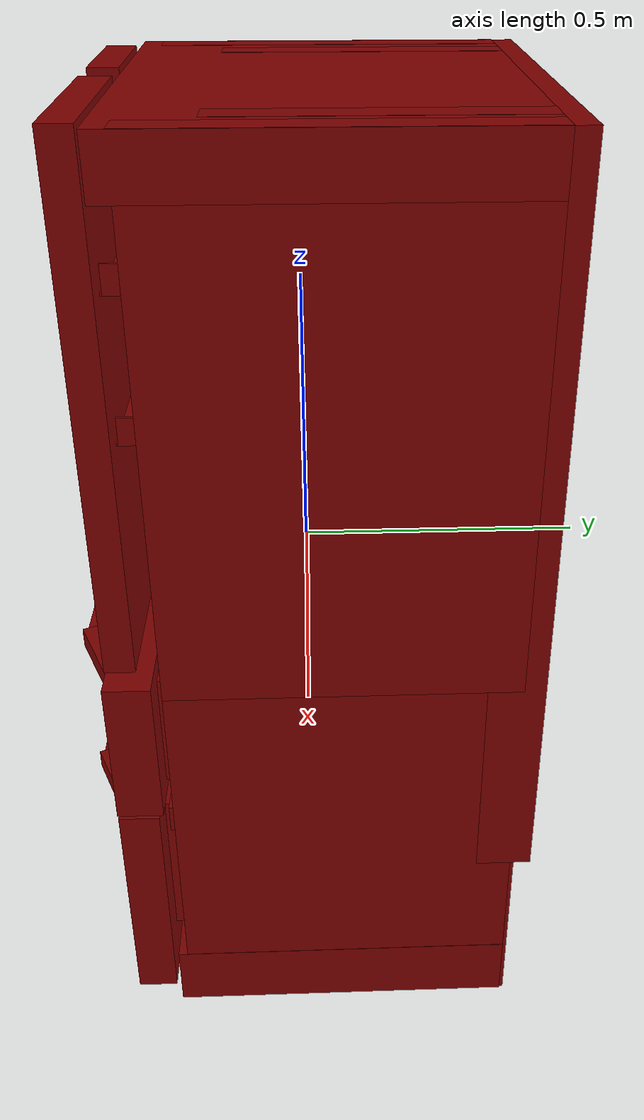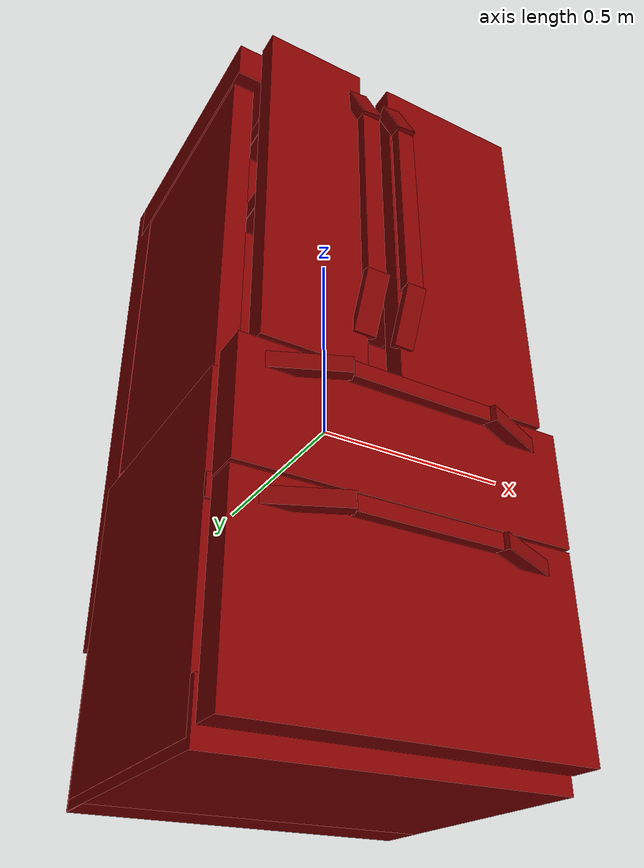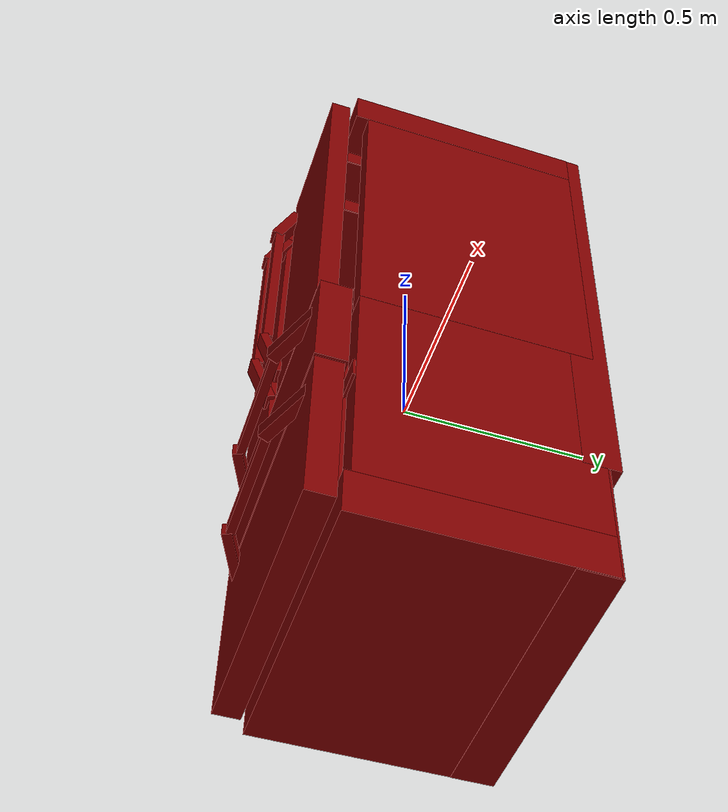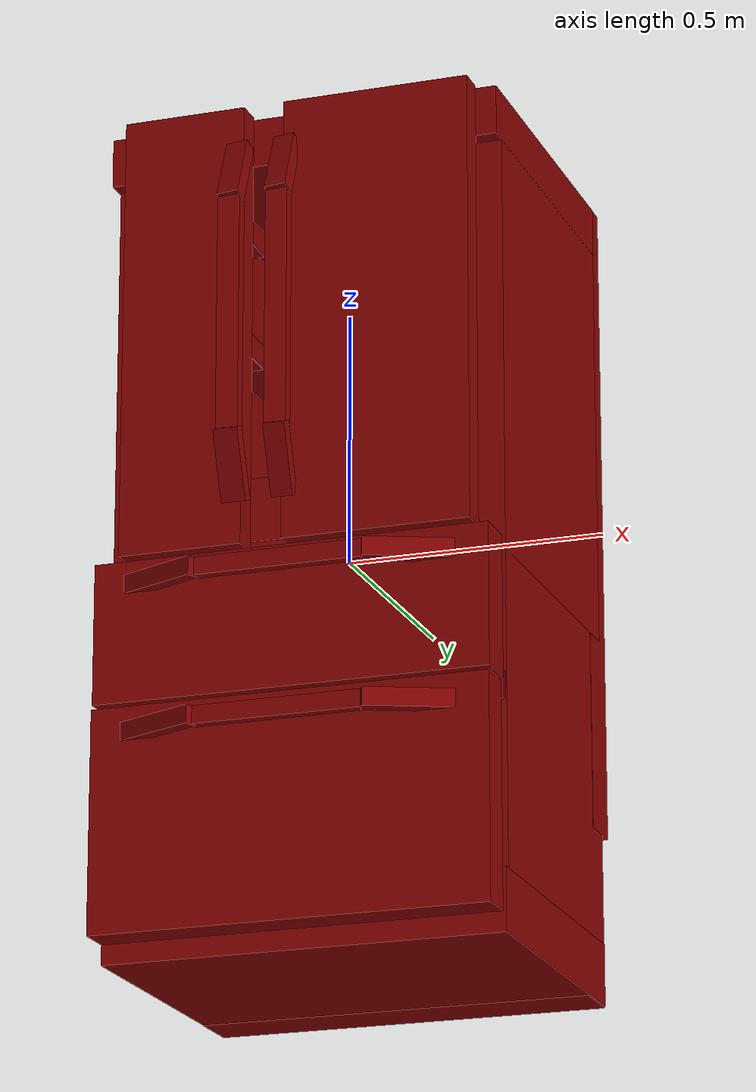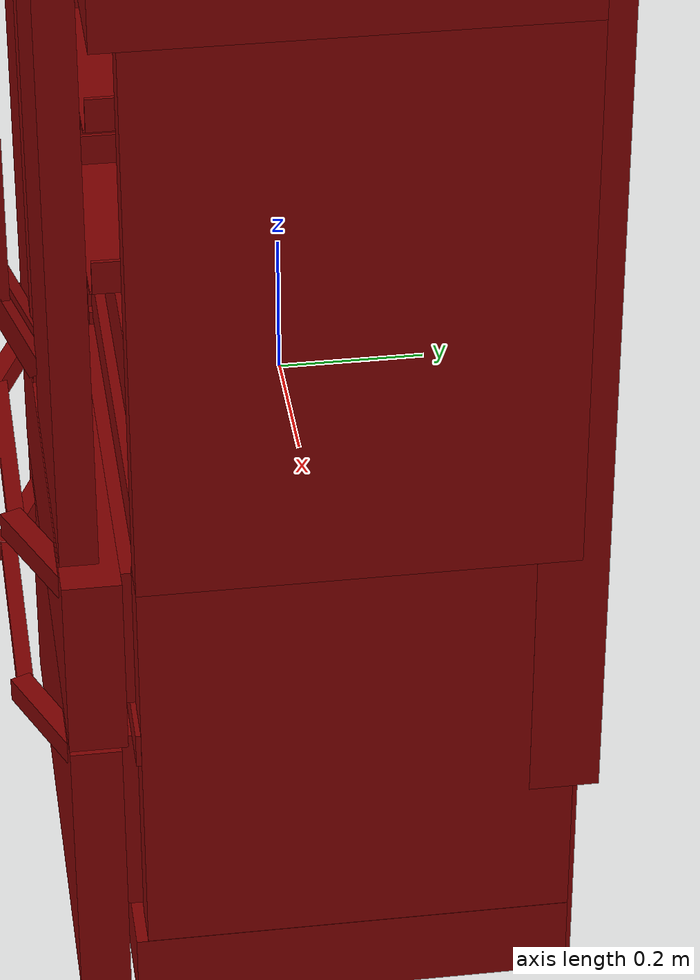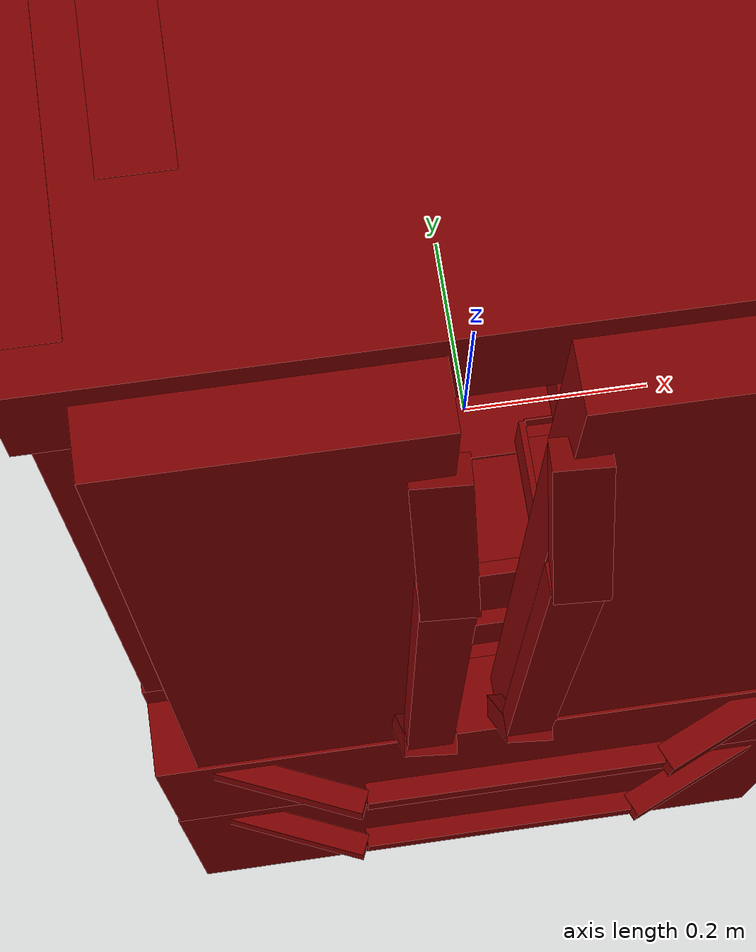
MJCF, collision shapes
<mujoco model="model">
  <compiler angle="radian"/>
  <asset>
    <mesh file="visuals/Body001.obj" name="Body001_vis"/>
    <mesh file="visuals/Body001_Clear.obj" name="Body001_Clear_vis"/>
    <mesh file="visuals/Door001.obj" name="Door001_vis"/>
    <mesh file="visuals/Door001_Clear.obj" name="Door001_Clear_vis"/>
    <mesh file="visuals/Door002.obj" name="Door002_vis"/>
    <mesh file="visuals/Door002_Clear.obj" name="Door002_Clear_vis"/>
    <mesh file="visuals/Drawer001.obj" name="Drawer001_vis"/>
    <mesh file="visuals/Drawer002.obj" name="Drawer002_vis"/>
    <mesh file="visuals/Drawer003.obj" name="Drawer003_vis"/>
    <texture file="visuals/T_BC001.png" name="Body001_material" type="2d"/>
    <material name="Body001_material" rgba="1 1 1 1.0" texture="Body001_material" shininess="0.6585055291652679" specular="0.3103448502657381"/>
    <texture file="visuals/T_BC001.png" name="Body001_Clear_material" type="2d"/>
    <material name="Body001_Clear_material" rgba="1 1 1 0.4644808769226074" texture="Body001_Clear_material" shininess="0.2512328028678894" specular="0.3103448502657381"/>
    <texture file="visuals/T_BC001.png" name="Door001_material" type="2d"/>
    <material name="Door001_material" rgba="1 1 1 1.0" texture="Door001_material" shininess="0.6585055291652679" specular="0.3103448502657381"/>
    <texture file="visuals/T_BC001.png" name="Door001_Clear_material" type="2d"/>
    <material name="Door001_Clear_material" rgba="1 1 1 0.4644808769226074" texture="Door001_Clear_material" shininess="0.2512328028678894" specular="0.3103448502657381"/>
    <texture file="visuals/T_BC001.png" name="Door002_material" type="2d"/>
    <material name="Door002_material" rgba="1 1 1 1.0" texture="Door002_material" shininess="0.6585055291652679" specular="0.3103448502657381"/>
    <texture file="visuals/T_BC001.png" name="Door002_Clear_material" type="2d"/>
    <material name="Door002_Clear_material" rgba="1 1 1 0.4644808769226074" texture="Door002_Clear_material" shininess="0.2512328028678894" specular="0.3103448502657381"/>
    <texture file="visuals/T_BC001.png" name="Drawer001_material" type="2d"/>
    <material name="Drawer001_material" rgba="1 1 1 1.0" texture="Drawer001_material" shininess="0.6585055291652679" specular="0.3103448502657381"/>
    <texture file="visuals/T_BC001.png" name="Drawer002_material" type="2d"/>
    <material name="Drawer002_material" rgba="1 1 1 1.0" texture="Drawer002_material" shininess="0.6585055291652679" specular="0.3103448502657381"/>
    <texture file="visuals/T_BC001.png" name="Drawer003_material" type="2d"/>
    <material name="Drawer003_material" rgba="1 1 1 1.0" texture="Drawer003_material" shininess="0.6585055291652679" specular="0.3103448502657381"/>
  </asset>
  <default>
    <default class="visual">
      <geom conaffinity="0" contype="0" group="1" type="mesh"/>
    </default>
    <default class="collision">
      <geom group="0" rgba="0.5 0 0 0.5"/>
    </default>
    <default class="spawn">
      <geom group="0" rgba="1 1 1 0.5" contype="0" conaffinity="0"/>
      <site group="0" rgba="1 1 1 0.5"/>
    </default>
    <default class="region">
      <geom group="1" conaffinity="0" contype="0" rgba="0 1 0 0"/>
    </default>
  </default>
  <worldbody>
    <body>
      <body name="object">
        <geom mesh="Body001_vis" type="mesh" solimp="0.998 0.998 0.001" solref="0.001 1" density="100" friction="0.95 0.3 0.1" class="visual" material="Body001_material"/>
        <geom class="collision" type="box" pos="0.359128 0.058113 0.361855" size="0.02636534348130226 0.2985576391220093 0.4524836838245392" quat="1.0 0.0 0.0 0.0"/>
        <geom class="collision" type="box" pos="-0.358292 0.058113 0.356553" size="0.025057246908545494 0.2985575795173645 0.4577849507331848" quat="1.0 0.0 0.0 0.0"/>
        <geom class="collision" type="box" pos="-0.000614 0.344328 0.168060" size="0.38610485196113586 0.04896754398941994 0.645643949508667" quat="1.0 0.0 0.0 0.0"/>
        <geom class="collision" type="box" pos="-0.001632 0.308223 -0.449676" size="0.38464027643203735 0.055489346385002136 0.36301159858703613" quat="1.0 0.0 0.0 0.0"/>
        <geom class="collision" type="box" pos="-0.000583 0.137514 -0.623895" size="0.35854974389076233 0.10725203901529312 0.060192689299583435" quat="0.8052064180374146 0.5929946303367615 -1.3167124518090139e-16 1.2232067335595694e-24"/>
        <geom class="collision" type="box" pos="-0.000343 0.041244 0.765736" size="0.386502742767334 0.3154264986515045 0.04821908101439476" quat="1.0 0.0 0.0 0.0"/>
        <geom class="collision" type="box" pos="-0.000583 0.062967 -0.061921" size="0.3585450351238251 0.29810455441474915 0.038612063974142075" quat="1.0 0.0 0.0 0.0"/>
        <geom class="collision" type="box" pos="-0.351127 0.058113 -0.440472" size="0.03585692122578621 0.2985583245754242 0.35007819533348083" quat="1.0 0.0 0.0 0.0"/>
        <geom class="collision" type="box" pos="0.351184 0.058113 -0.440472" size="0.03403741121292114 0.29855847358703613 0.35007843375205994" quat="1.0 0.0 0.0 0.0"/>
        <geom class="collision" type="box" pos="-0.001632 -0.211395 -0.351708" size="0.3846416473388672 0.03633573278784752 0.025895364582538605" quat="1.0 0.0 0.0 0.0"/>
        <geom class="collision" type="box" pos="-0.000317 0.049934 -0.751486" size="0.38624995946884155 0.30673739314079285 0.060066159814596176" quat="1.0 0.0 0.0 0.0"/>
        <geom class="collision" type="box" pos="-0.000583 0.198242 -0.588251" size="0.35854974389076233 0.10725203901529312 0.07130120694637299" quat="0.6569743752479553 0.7539129257202148 -1.6740228450452978e-16 8.92800271459846e-24"/>
        <geom class="collision" type="box" pos="-0.274652 0.113783 0.356553" size="0.027455275878310204 0.24289001524448395 0.4577880799770355" quat="1.0 0.0 0.0 0.0"/>
        <geom class="collision" type="box" pos="0.287020 0.113783 0.356553" size="0.0274552870541811 0.2428901195526123 0.45778822898864746" quat="1.0 0.0 0.0 0.0"/>
        <body name="Body001_Clear">
          <geom mesh="Body001_Clear_vis" type="mesh" solimp="0.998 0.998 0.001" solref="0.001 1" density="100" friction="0.95 0.3 0.1" class="visual" material="Body001_Clear_material"/>
          <geom class="collision" type="box" pos="-0.001629 0.108898 0.423020" size="0.32924920320510864 0.2075573056936264 0.00248630135320127" quat="1.0 0.0 0.0 0.0"/>
          <geom class="collision" type="box" pos="-0.001629 0.109281 0.111395" size="0.32924920320510864 0.2075575441122055 0.00248630135320127" quat="1.0 0.0 0.0 0.0"/>
        </body>
        <body name="Door001">
          <joint axis="0.0 0.0 -1.0" pos="-0.343997 -0.309157 0.356832" limited="true" name="Door001_joint" range="0.0 1.5707963267948966" type="hinge" damping="1" frictionloss="1" armature=".01" stiffness="0.05"/>
          <geom mesh="Door001_vis" type="mesh" solimp="0.998 0.998 0.001" solref="0.001 1" density="100" friction="0.95 0.3 0.1" class="visual" material="Door001_material"/>
          <geom class="collision" type="box" pos="-0.102208 -0.380201 0.381017" size="0.02168402262032032 0.012337328866124153 0.23359352350234985" quat="1.0 0.0 0.0 0.0"/>
          <geom class="collision" type="box" pos="-0.102597 -0.358925 0.672237" size="0.06859152764081955 0.01515895128250122 0.021706990897655487" quat="0.678273618221283 -0.17464637756347656 -0.7043882012367249 0.11524246633052826"/>
          <geom class="collision" type="box" pos="-0.102715 -0.362653 0.086925" size="0.06867087632417679 0.010878975503146648 0.024787630885839462" quat="0.7043883204460144 0.11524229496717453 -0.6782735586166382 -0.17464612424373627"/>
          <geom class="collision" type="box" pos="-0.214396 -0.310711 0.377629" size="0.12037475407123566 0.02620462328195572 0.43623125553131104" quat="1.0 0.0 0.0 0.0"/>
          <body name="Door001_Clear">
            <geom mesh="Door001_Clear_vis" type="mesh" solimp="0.998 0.998 0.001" solref="0.001 1" density="100" friction="0.95 0.3 0.1" class="visual" material="Door001_Clear_material"/>
            <geom class="collision" type="box" pos="-0.215597 -0.225583 0.346610" size="0.1022782251238823 0.05434567481279373 0.0020508288871496916" quat="1.0 0.0 0.0 0.0"/>
            <geom class="collision" type="box" pos="-0.114170 -0.223968 0.368172" size="0.0027227068785578012 0.05273094028234482 0.02305692434310913" quat="1.0 0.0 0.0 0.0"/>
            <geom class="collision" type="box" pos="-0.316562 -0.223968 0.368172" size="0.002722695469856262 0.0527309887111187 0.023056956008076668" quat="1.0 0.0 0.0 0.0"/>
            <geom class="collision" type="box" pos="-0.215366 -0.172270 0.387212" size="0.0984693393111229 0.0010846159420907497 0.0033594632986932993" quat="0.9606382250785828 -0.27780213952064514 0.0004516859189607203 -6.287743599386886e-05"/>
            <geom class="collision" type="box" pos="-0.215597 -0.225583 0.577356" size="0.10227879881858826 0.054345857352018356 0.002050836104899645" quat="1.0 0.0 0.0 0.0"/>
            <geom class="collision" type="box" pos="-0.114170 -0.223968 0.598919" size="0.002722715260460973 0.05273112654685974 0.023057041689753532" quat="1.0 0.0 0.0 0.0"/>
            <geom class="collision" type="box" pos="-0.316562 -0.223968 0.598919" size="0.0027227052487432957 0.05273117497563362 0.02305707335472107" quat="1.0 0.0 0.0 0.0"/>
            <geom class="collision" type="box" pos="-0.215366 -0.172449 0.614841" size="0.09846959263086319 0.0010846188524737954 0.0033594744745641947" quat="0.9692435264587402 -0.2461036890745163 -0.0 0.0"/>
          </body>
        </body>
        <body name="Door002">
          <joint axis="0.0 0.0 1.0" pos="0.355414 -0.308228 0.375739" limited="true" name="Door002_joint" range="0.0 1.5707963267948966" type="hinge" damping="1" frictionloss="1" armature=".01" stiffness="0.05"/>
          <geom mesh="Door002_vis" type="mesh" solimp="0.998 0.998 0.001" solref="0.001 1" density="100" friction="0.95 0.3 0.1" class="visual" material="Door002_material"/>
          <geom class="collision" type="box" pos="-0.007594 -0.380400 0.381017" size="0.021374424919486046 0.01253611408174038 0.23359449207782745" quat="1.0 0.0 0.0 0.0"/>
          <geom class="collision" type="box" pos="-0.007621 -0.359553 0.672526" size="0.06859152764081955 0.015787482261657715 0.020976748317480087" quat="0.678273618221283 -0.17464637756347656 -0.7043882012367249 0.11524246633052826"/>
          <geom class="collision" type="box" pos="-0.007898 -0.362572 0.086983" size="0.06859152019023895 0.011021395213901997 0.021683957427740097" quat="0.7043883204460144 0.11524229496717453 -0.6782735586166382 -0.17464612424373627"/>
          <geom class="collision" type="box" pos="0.167185 -0.310659 0.377629" size="0.1817389875650406 0.02615285851061344 0.4362322986125946" quat="1.0 0.0 0.0 0.0"/>
          <body name="Door002_Clear">
            <geom mesh="Door002_Clear_vis" type="mesh" solimp="0.998 0.998 0.001" solref="0.001 1" density="100" friction="0.95 0.3 0.1" class="visual" material="Door002_Clear_material"/>
            <geom class="collision" type="box" pos="0.162713 -0.225583 0.344323" size="0.15988805890083313 0.05434613674879074 0.002050847513601184" quat="1.0 0.0 0.0 0.0"/>
            <geom class="collision" type="box" pos="0.321748 -0.223968 0.365885" size="0.0027227168902754784 0.052731405943632126 0.023057222366333008" quat="1.0 0.0 0.0 0.0"/>
            <geom class="collision" type="box" pos="0.004140 -0.223968 0.365885" size="0.0027227201499044895 0.05273145064711571 0.023057254031300545" quat="1.0 0.0 0.0 0.0"/>
            <geom class="collision" type="box" pos="0.162944 -0.170903 0.383335" size="0.1560763120651245 0.001084623159840703 0.0033594914712011814" quat="0.9737818241119385 -0.2274840772151947 -0.0 0.0"/>
            <geom class="collision" type="box" pos="0.162713 -0.225583 0.577356" size="0.15988868474960327 0.054346323013305664 0.002050854731351137" quat="1.0 0.0 0.0 0.0"/>
            <geom class="collision" type="box" pos="0.321748 -0.223968 0.598919" size="0.002722726669162512 0.05273158848285675 0.02305733971297741" quat="1.0 0.0 0.0 0.0"/>
            <geom class="collision" type="box" pos="0.004140 -0.223968 0.598919" size="0.002722729928791523 0.05273163691163063 0.023057371377944946" quat="1.0 0.0 0.0 0.0"/>
            <geom class="collision" type="box" pos="0.162944 -0.169859 0.617310" size="0.15607678890228271 0.0010846260702237487 0.0033595028799027205" quat="0.9810242652893066 -0.19388504326343536 -0.0 0.0"/>
          </body>
        </body>
        <body name="Drawer001">
          <joint axis="0.0 -1.0 0.0" pos="0.001014 -0.133920 -0.561322" limited="true" name="Drawer001_joint" range="0.0 0.3" type="slide" damping="1" frictionloss="1" armature=".01" stiffness="0.05"/>
          <geom mesh="Drawer001_vis" type="mesh" solimp="0.998 0.998 0.001" solref="0.001 1" density="100" friction="0.95 0.3 0.1" class="visual" material="Drawer001_material"/>
          <geom class="collision" type="box" pos="0.004326 -0.111392 -0.676569" size="0.27537819743156433 0.15478265285491943 0.0027201969642192125" quat="1.0 0.0 0.0 0.0"/>
          <geom class="collision" type="box" pos="0.280138 -0.107514 -0.545668" size="0.025485331192612648 0.15866568684577942 0.13257615268230438" quat="1.0 0.0 0.0 0.0"/>
          <geom class="collision" type="box" pos="-0.277274 -0.107514 -0.545668" size="0.019958391785621643 0.15866568684577942 0.1325760930776596" quat="1.0 0.0 0.0 0.0"/>
          <geom class="collision" type="box" pos="0.004326 0.068329 -0.571143" size="0.29865118861198425 0.008362683467566967 0.09997935593128204" quat="0.9911026954650879 -0.13309930264949799 0.0 0.0"/>
          <geom class="collision" type="box" pos="-0.000121 -0.301486 -0.562552" size="0.38272878527641296 0.035327401012182236 0.21285556256771088" quat="1.0 0.0 0.0 0.0"/>
          <geom class="collision" type="box" pos="-0.000920 -0.382467 -0.396499" size="0.16135644912719727 0.011311881244182587 0.017042309045791626" quat="1.0 0.0 0.0 0.0"/>
          <geom class="collision" type="box" pos="0.238962 -0.355220 -0.396379" size="0.08587073534727097 0.01505428645759821 0.017603665590286255" quat="0.9793906807899475 0.0 0.0 0.2019749879837036"/>
          <geom class="collision" type="box" pos="-0.243256 -0.357477 -0.396379" size="0.08587072789669037 0.013152176514267921 0.017603663727641106" quat="0.9793907403945923 0.0 0.0 -0.20197463035583496"/>
          <geom class="collision" type="box" pos="0.000847 -0.074988 -0.612343" size="0.010680019855499268 0.1267247200012207 0.06990315765142441" quat="1.0 0.0 0.0 0.0"/>
          <geom class="collision" type="box" pos="0.280138 -0.032852 -0.447484" size="0.025485331192612648 0.15866568684577942 0.034893859177827835" quat="1.0 0.0 0.0 0.0"/>
          <geom class="collision" type="box" pos="0.280138 0.050047 -0.538530" size="0.025485331192612648 0.11963428556919098 0.034643225371837616" quat="0.796074390411377 0.6051988005638123 1.343811153374047e-16 -6.183057065242461e-23"/>
          <geom class="collision" type="box" pos="-0.280332 0.050047 -0.538530" size="0.025485331192612648 0.11963428556919098 0.034643225371837616" quat="0.796074390411377 0.6051988005638123 1.343811153374047e-16 -6.183057065242461e-23"/>
          <geom class="collision" type="box" pos="-0.280332 -0.032852 -0.447484" size="0.025485331192612648 0.15866568684577942 0.034893859177827835" quat="1.0 0.0 0.0 0.0"/>
          <geom class="collision" type="box" pos="-0.253341 -0.085553 -0.571984" size="0.020802145823836327 0.03368447721004486 0.1062593013048172" quat="1.0 0.0 0.0 0.0"/>
          <geom class="collision" type="box" pos="0.257873 -0.085553 -0.571984" size="0.020802145823836327 0.03368447721004486 0.1062593013048172" quat="1.0 0.0 0.0 0.0"/>
          <geom class="collision" type="box" pos="0.001374 -0.234452 -0.531530" size="0.31069764494895935 0.032359808683395386 0.15073318779468536" quat="1.0 0.0 0.0 0.0"/>
        </body>
        <body name="Drawer002">
          <joint axis="0.0 -1.0 0.0" pos="0.001014 -0.075600 -0.206923" limited="true" name="Drawer002_joint" range="0.0 0.3" type="slide" damping="1" frictionloss="1" armature=".01" stiffness="0.05"/>
          <geom mesh="Drawer002_vis" type="mesh" solimp="0.998 0.998 0.001" solref="0.001 1" density="100" friction="0.95 0.3 0.1" class="visual" material="Drawer002_material"/>
          <geom class="collision" type="box" pos="-0.009150 -0.062528 -0.321651" size="0.27537819743156433 0.20364704728126526 0.0027201951015740633" quat="1.0 0.0 0.0 0.0"/>
          <geom class="collision" type="box" pos="0.274539 -0.058649 -0.229499" size="0.03541669249534607 0.20752936601638794 0.08869507163763046" quat="1.0 0.0 0.0 0.0"/>
          <geom class="collision" type="box" pos="-0.266809 -0.058649 -0.229499" size="0.029786858707666397 0.20752936601638794 0.08869501948356628" quat="1.0 0.0 0.0 0.0"/>
          <geom class="collision" type="box" pos="0.004326 0.161447 -0.250725" size="0.29865118861198425 0.008406518027186394 0.08296908438205719" quat="0.9585145711898804 -0.2850435972213745 9.149510929898043e-18 2.302646245811321e-18"/>
          <geom class="collision" type="box" pos="0.001695 -0.297630 -0.206187" size="0.3824079632759094 0.040017206221818924 0.13565924763679504" quat="1.0 0.0 0.0 0.0"/>
          <geom class="collision" type="box" pos="-0.000920 -0.382467 -0.113411" size="0.16135233640670776 0.011311417445540428 0.017212312668561935" quat="1.0 0.0 0.0 0.0"/>
          <geom class="collision" type="box" pos="0.239144 -0.355642 -0.113623" size="0.08587073534727097 0.01551352720707655 0.01810661517083645" quat="0.9793906807899475 0.0 0.0 0.2019749879837036"/>
          <geom class="collision" type="box" pos="-0.243256 -0.357477 -0.113623" size="0.08587072789669037 0.013152177445590496 0.01810661517083645" quat="0.9793907403945923 0.0 0.0 -0.20197463035583496"/>
          <geom class="collision" type="box" pos="0.000847 -0.034308 -0.270321" size="0.010680019855499268 0.16740410029888153 0.047872502356767654" quat="1.0 0.0 0.0 0.0"/>
          <geom class="collision" type="box" pos="0.274539 0.036294 -0.167827" size="0.03541669249534607 0.20550929009914398 0.02835458517074585" quat="1.0 0.0 0.0 0.0"/>
          <geom class="collision" type="box" pos="0.274539 0.133028 -0.218269" size="0.023191457614302635 0.04744146391749382 0.0580790638923645" quat="0.9578086137771606 -0.2874067723751068 -6.3817123224809e-17 -2.024741478083862e-24"/>
          <geom class="collision" type="box" pos="-0.274129 0.133028 -0.218269" size="0.023191457614302635 0.04744146391749382 0.0580790638923645" quat="0.9578086137771606 -0.2874067723751068 -6.3817123224809e-17 -2.024741478083862e-24"/>
          <geom class="collision" type="box" pos="-0.274129 0.036294 -0.168493" size="0.03541669249534607 0.20550929009914398 0.027688996866345406" quat="1.0 0.0 0.0 0.0"/>
          <geom class="collision" type="box" pos="-0.002599 0.224770 -0.185898" size="0.3069462478160858 0.017033550888299942 0.010283710435032845" quat="1.0 0.0 0.0 0.0"/>
          <geom class="collision" type="box" pos="0.004685 -0.230108 -0.212652" size="0.3091416656970978 0.03516469523310661 0.10881663858890533" quat="1.0 0.0 0.0 0.0"/>
        </body>
        <body name="Drawer003">
          <joint axis="0.0 -1.0 0.0" pos="0.006038 0.002903 0.042777" limited="true" name="Drawer003_joint" range="0.0 0.3" type="slide" damping="1" frictionloss="1" armature=".01" stiffness="0.05"/>
          <geom mesh="Drawer003_vis" type="mesh" solimp="0.998 0.998 0.001" solref="0.001 1" density="100" friction="0.95 0.3 0.1" class="visual" material="Drawer003_material"/>
          <geom class="collision" type="box" pos="0.005866 0.005848 -0.018479" size="0.23600749671459198 0.2128104269504547 0.0026627229526638985" quat="1.0 0.0 0.0 0.0"/>
          <geom class="collision" type="box" pos="0.237608 0.005848 0.031938" size="0.006679152138531208 0.21281053125858307 0.05343661829829216" quat="1.0 0.0 0.0 0.0"/>
          <geom class="collision" type="box" pos="-0.225196 0.005848 0.031938" size="0.006502158008515835 0.21281063556671143 0.05343661829829216" quat="1.0 0.0 0.0 0.0"/>
          <geom class="collision" type="box" pos="0.005866 0.222768 0.031938" size="0.23600706458091736 0.004123056773096323 0.05343661829829216" quat="1.0 0.0 0.0 0.0"/>
          <geom class="collision" type="box" pos="0.006004 -0.214062 0.045396" size="0.2555485665798187 0.007113639730960131 0.06260725855827332" quat="1.0 0.0 0.0 0.0"/>
        </body>
        <geom class="region" name="reg_main" type="box" pos="0.0 0.028033000000000002 0.0" size="0.387105 0.365746 0.81469"/>
      </body>
    </body>
  </worldbody>
  <actuator>
    <motor name="Door001_joint_actuator" joint="Door001_joint" gear="50"/>
    <motor name="Door002_joint_actuator" joint="Door002_joint" gear="50"/>
    <motor name="Drawer001_joint_actuator" joint="Drawer001_joint" gear="50"/>
    <motor name="Drawer002_joint_actuator" joint="Drawer002_joint" gear="50"/>
    <motor name="Drawer003_joint_actuator" joint="Drawer003_joint" gear="50"/>
  </actuator>
</mujoco>
